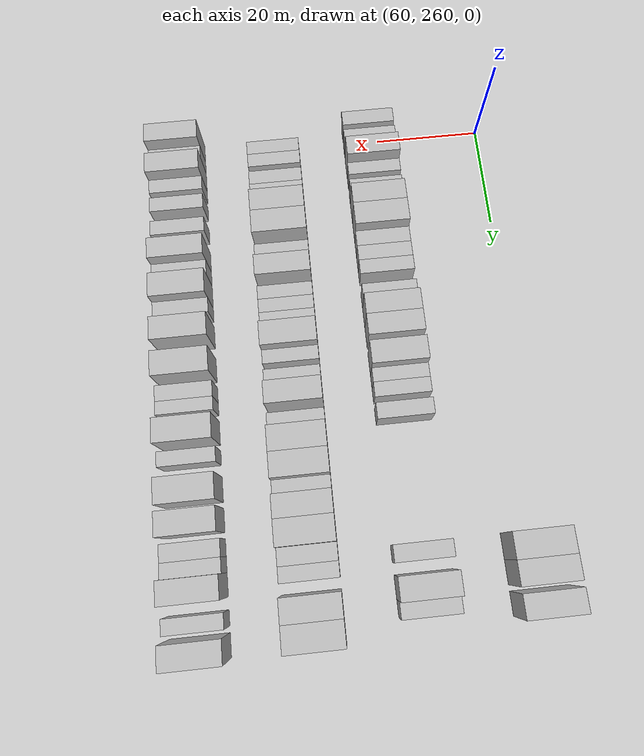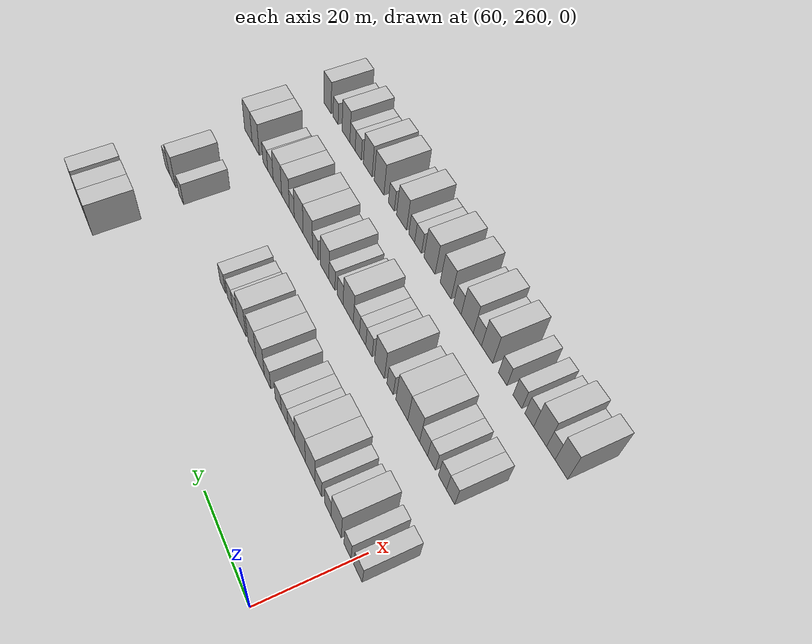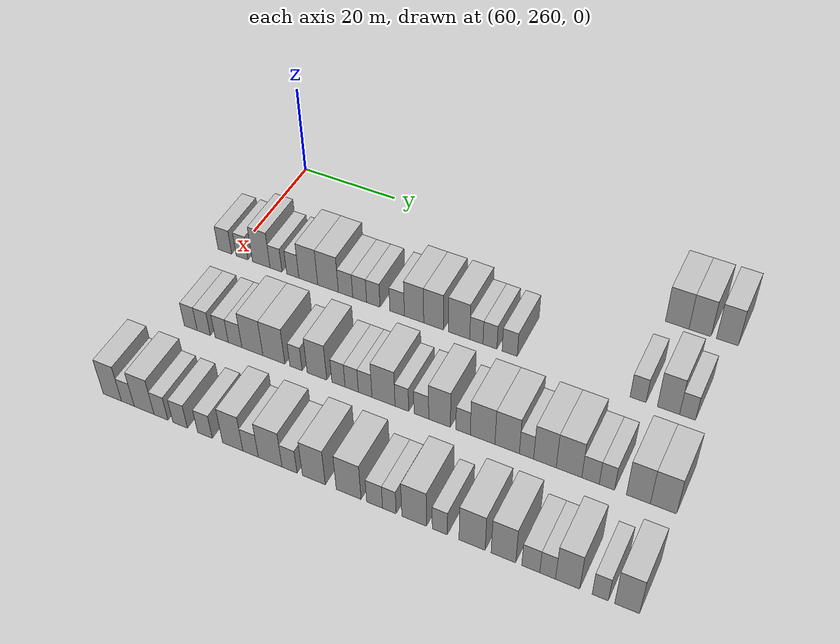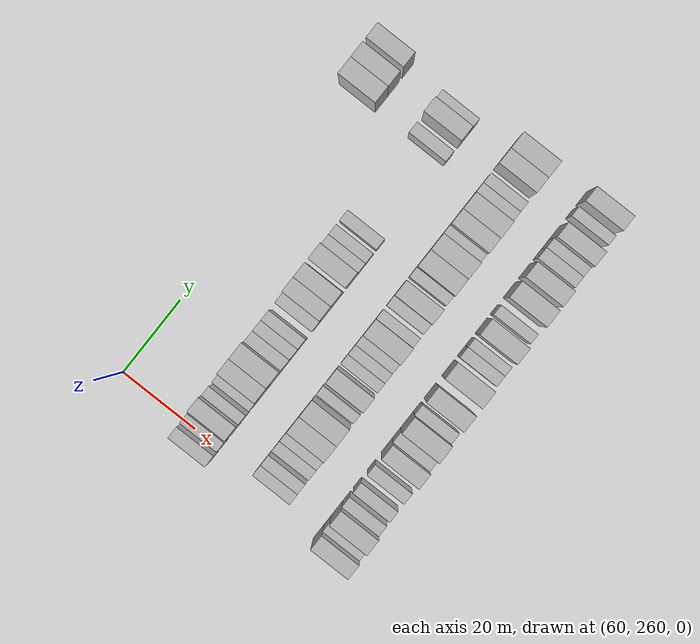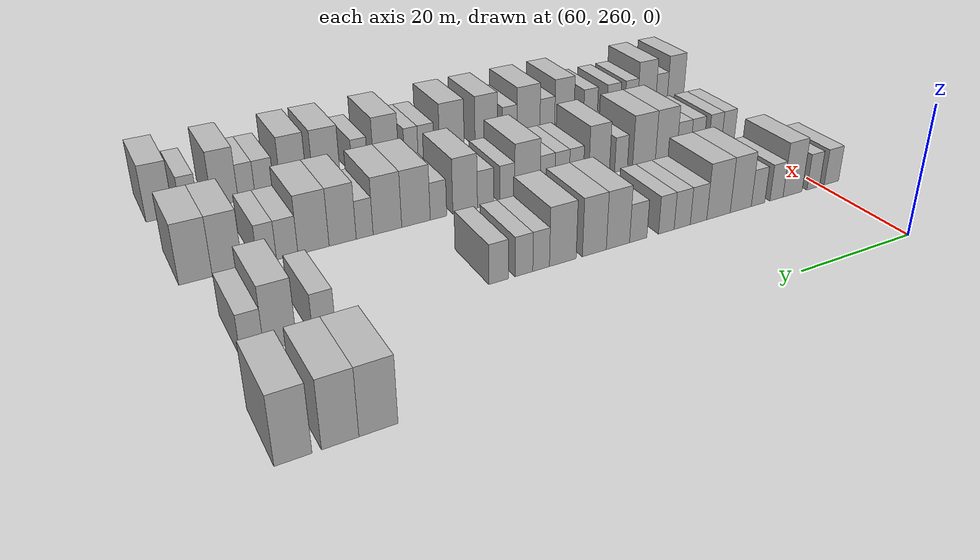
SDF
<sdf version="1.6">
 <world name="default">
  <model name="building_530">
   <static>1</static>
   <pose>63.0000 340.7770 0 0.000000 0.000000 0.000000</pose>
   <link name="link">
    <pose>0 0 4.50 0 0 0</pose>
    <collision name="collision"><geometry><box><size>10.0000 4.3967 9.0000</size></box></geometry></collision>
    <visual name="visual">
     <cast_shadows>0</cast_shadows>
     <geometry><box><size>10.0000 4.3967 9.0000</size></box></geometry>
     <material>
      <script>
       <uri>model://HANNAS_wall/materials/scripts</uri>
       <uri>model://HANNAS_wall/materials/textures</uri>
       <name>vrc/HANNAS_wall</name>
      </script>
     </material>
    </visual>
   </link>
  </model>
  <model name="building_531">
   <static>1</static>
   <pose>63.0000 345.0128 0 0.000000 0.000000 0.000000</pose>
   <link name="link">
    <pose>0 0 4.50 0 0 0</pose>
    <collision name="collision"><geometry><box><size>10.0000 4.0750 9.0000</size></box></geometry></collision>
    <visual name="visual">
     <cast_shadows>0</cast_shadows>
     <geometry><box><size>10.0000 4.0750 9.0000</size></box></geometry>
     <material>
      <script>
       <uri>model://HANNAS_wall/materials/scripts</uri>
       <uri>model://HANNAS_wall/materials/textures</uri>
       <name>vrc/HANNAS_wall</name>
      </script>
     </material>
    </visual>
   </link>
  </model>
  <model name="building_532">
   <static>1</static>
   <pose>63.0000 350.0410 0 0.000000 0.000000 0.000000</pose>
   <link name="link">
    <pose>0 0 4.50 0 0 0</pose>
    <collision name="collision"><geometry><box><size>10.0000 3.9814 9.0000</size></box></geometry></collision>
    <visual name="visual">
     <cast_shadows>0</cast_shadows>
     <geometry><box><size>10.0000 3.9814 9.0000</size></box></geometry>
     <material>
      <script>
       <uri>model://HANNAS_wall/materials/scripts</uri>
       <uri>model://HANNAS_wall/materials/textures</uri>
       <name>vrc/HANNAS_wall</name>
      </script>
     </material>
    </visual>
   </link>
  </model>
  <model name="building_684">
   <static>1</static>
   <pose>82.0000 257.8496 0 0.000000 0.000000 0.000000</pose>
   <link name="link">
    <pose>0 0 3.00 0 0 0</pose>
    <collision name="collision"><geometry><box><size>10.0000 2.9936 6.0000</size></box></geometry></collision>
    <visual name="visual">
     <cast_shadows>0</cast_shadows>
     <geometry><box><size>10.0000 2.9936 6.0000</size></box></geometry>
     <material>
      <script>
       <uri>model://HANNAS_wall/materials/scripts</uri>
       <uri>model://HANNAS_wall/materials/textures</uri>
       <name>vrc/HANNAS_wall</name>
      </script>
     </material>
    </visual>
   </link>
  </model>
  <model name="building_685">
   <static>1</static>
   <pose>82.0000 261.6304 0 0.000000 0.000000 0.000000</pose>
   <link name="link">
    <pose>0 0 3.00 0 0 0</pose>
    <collision name="collision"><geometry><box><size>10.0000 2.5680 6.0000</size></box></geometry></collision>
    <visual name="visual">
     <cast_shadows>0</cast_shadows>
     <geometry><box><size>10.0000 2.5680 6.0000</size></box></geometry>
     <material>
      <script>
       <uri>model://HANNAS_wall/materials/scripts</uri>
       <uri>model://HANNAS_wall/materials/textures</uri>
       <name>vrc/HANNAS_wall</name>
      </script>
     </material>
    </visual>
   </link>
  </model>
  <model name="building_686">
   <static>1</static>
   <pose>82.0000 265.8213 0 0.000000 0.000000 0.000000</pose>
   <link name="link">
    <pose>0 0 4.50 0 0 0</pose>
    <collision name="collision"><geometry><box><size>10.0000 3.8138 9.0000</size></box></geometry></collision>
    <visual name="visual">
     <cast_shadows>0</cast_shadows>
     <geometry><box><size>10.0000 3.8138 9.0000</size></box></geometry>
     <material>
      <script>
       <uri>model://HANNAS_wall/materials/scripts</uri>
       <uri>model://HANNAS_wall/materials/textures</uri>
       <name>vrc/HANNAS_wall</name>
      </script>
     </material>
    </visual>
   </link>
  </model>
  <model name="building_687">
   <static>1</static>
   <pose>82.0000 269.0118 0 0.000000 0.000000 0.000000</pose>
   <link name="link">
    <pose>0 0 3.00 0 0 0</pose>
    <collision name="collision"><geometry><box><size>10.0000 2.5670 6.0000</size></box></geometry></collision>
    <visual name="visual">
     <cast_shadows>0</cast_shadows>
     <geometry><box><size>10.0000 2.5670 6.0000</size></box></geometry>
     <material>
      <script>
       <uri>model://HANNAS_wall/materials/scripts</uri>
       <uri>model://HANNAS_wall/materials/textures</uri>
       <name>vrc/HANNAS_wall</name>
      </script>
     </material>
    </visual>
   </link>
  </model>
  <model name="building_688">
   <static>1</static>
   <pose>82.0000 272.5976 0 0.000000 0.000000 0.000000</pose>
   <link name="link">
    <pose>0 0 3.00 0 0 0</pose>
    <collision name="collision"><geometry><box><size>10.0000 2.6047 6.0000</size></box></geometry></collision>
    <visual name="visual">
     <cast_shadows>0</cast_shadows>
     <geometry><box><size>10.0000 2.6047 6.0000</size></box></geometry>
     <material>
      <script>
       <uri>model://HANNAS_wall/materials/scripts</uri>
       <uri>model://HANNAS_wall/materials/textures</uri>
       <name>vrc/HANNAS_wall</name>
      </script>
     </material>
    </visual>
   </link>
  </model>
  <model name="building_689">
   <static>1</static>
   <pose>82.0000 275.8940 0 0.000000 0.000000 0.000000</pose>
   <link name="link">
    <pose>0 0 4.50 0 0 0</pose>
    <collision name="collision"><geometry><box><size>10.0000 3.9879 9.0000</size></box></geometry></collision>
    <visual name="visual">
     <cast_shadows>0</cast_shadows>
     <geometry><box><size>10.0000 3.9879 9.0000</size></box></geometry>
     <material>
      <script>
       <uri>model://HANNAS_wall/materials/scripts</uri>
       <uri>model://HANNAS_wall/materials/textures</uri>
       <name>vrc/HANNAS_wall</name>
      </script>
     </material>
    </visual>
   </link>
  </model>
  <model name="building_690">
   <static>1</static>
   <pose>82.0000 280.0515 0 0.000000 0.000000 0.000000</pose>
   <link name="link">
    <pose>0 0 4.50 0 0 0</pose>
    <collision name="collision"><geometry><box><size>10.0000 4.3272 9.0000</size></box></geometry></collision>
    <visual name="visual">
     <cast_shadows>0</cast_shadows>
     <geometry><box><size>10.0000 4.3272 9.0000</size></box></geometry>
     <material>
      <script>
       <uri>model://HANNAS_wall/materials/scripts</uri>
       <uri>model://HANNAS_wall/materials/textures</uri>
       <name>vrc/HANNAS_wall</name>
      </script>
     </material>
    </visual>
   </link>
  </model>
  <model name="building_691">
   <static>1</static>
   <pose>82.0000 283.7047 0 0.000000 0.000000 0.000000</pose>
   <link name="link">
    <pose>0 0 3.00 0 0 0</pose>
    <collision name="collision"><geometry><box><size>10.0000 2.9791 6.0000</size></box></geometry></collision>
    <visual name="visual">
     <cast_shadows>0</cast_shadows>
     <geometry><box><size>10.0000 2.9791 6.0000</size></box></geometry>
     <material>
      <script>
       <uri>model://HANNAS_wall/materials/scripts</uri>
       <uri>model://HANNAS_wall/materials/textures</uri>
       <name>vrc/HANNAS_wall</name>
      </script>
     </material>
    </visual>
   </link>
  </model>
  <model name="building_692">
   <static>1</static>
   <pose>82.0000 286.6263 0 0.000000 0.000000 0.000000</pose>
   <link name="link">
    <pose>0 0 3.00 0 0 0</pose>
    <collision name="collision"><geometry><box><size>10.0000 2.8641 6.0000</size></box></geometry></collision>
    <visual name="visual">
     <cast_shadows>0</cast_shadows>
     <geometry><box><size>10.0000 2.8641 6.0000</size></box></geometry>
     <material>
      <script>
       <uri>model://HANNAS_wall/materials/scripts</uri>
       <uri>model://HANNAS_wall/materials/textures</uri>
       <name>vrc/HANNAS_wall</name>
      </script>
     </material>
    </visual>
   </link>
  </model>
  <model name="building_693">
   <static>1</static>
   <pose>82.0000 289.4243 0 0.000000 0.000000 0.000000</pose>
   <link name="link">
    <pose>0 0 3.00 0 0 0</pose>
    <collision name="collision"><geometry><box><size>10.0000 2.7320 6.0000</size></box></geometry></collision>
    <visual name="visual">
     <cast_shadows>0</cast_shadows>
     <geometry><box><size>10.0000 2.7320 6.0000</size></box></geometry>
     <material>
      <script>
       <uri>model://HANNAS_wall/materials/scripts</uri>
       <uri>model://HANNAS_wall/materials/textures</uri>
       <name>vrc/HANNAS_wall</name>
      </script>
     </material>
    </visual>
   </link>
  </model>
  <model name="building_694">
   <static>1</static>
   <pose>82.0000 294.2600 0 0.000000 0.000000 0.000000</pose>
   <link name="link">
    <pose>0 0 3.00 0 0 0</pose>
    <collision name="collision"><geometry><box><size>10.0000 2.9395 6.0000</size></box></geometry></collision>
    <visual name="visual">
     <cast_shadows>0</cast_shadows>
     <geometry><box><size>10.0000 2.9395 6.0000</size></box></geometry>
     <material>
      <script>
       <uri>model://HANNAS_wall/materials/scripts</uri>
       <uri>model://HANNAS_wall/materials/textures</uri>
       <name>vrc/HANNAS_wall</name>
      </script>
     </material>
    </visual>
   </link>
  </model>
  <model name="building_695">
   <static>1</static>
   <pose>82.0000 297.6639 0 0.000000 0.000000 0.000000</pose>
   <link name="link">
    <pose>0 0 4.50 0 0 0</pose>
    <collision name="collision"><geometry><box><size>10.0000 3.8684 9.0000</size></box></geometry></collision>
    <visual name="visual">
     <cast_shadows>0</cast_shadows>
     <geometry><box><size>10.0000 3.8684 9.0000</size></box></geometry>
     <material>
      <script>
       <uri>model://HANNAS_wall/materials/scripts</uri>
       <uri>model://HANNAS_wall/materials/textures</uri>
       <name>vrc/HANNAS_wall</name>
      </script>
     </material>
    </visual>
   </link>
  </model>
  <model name="building_696">
   <static>1</static>
   <pose>82.0000 301.5385 0 0.000000 0.000000 0.000000</pose>
   <link name="link">
    <pose>0 0 4.50 0 0 0</pose>
    <collision name="collision"><geometry><box><size>10.0000 3.8808 9.0000</size></box></geometry></collision>
    <visual name="visual">
     <cast_shadows>0</cast_shadows>
     <geometry><box><size>10.0000 3.8808 9.0000</size></box></geometry>
     <material>
      <script>
       <uri>model://HANNAS_wall/materials/scripts</uri>
       <uri>model://HANNAS_wall/materials/textures</uri>
       <name>vrc/HANNAS_wall</name>
      </script>
     </material>
    </visual>
   </link>
  </model>
  <model name="building_697">
   <static>1</static>
   <pose>82.0000 306.5736 0 0.000000 0.000000 0.000000</pose>
   <link name="link">
    <pose>0 0 4.50 0 0 0</pose>
    <collision name="collision"><geometry><box><size>10.0000 4.1893 9.0000</size></box></geometry></collision>
    <visual name="visual">
     <cast_shadows>0</cast_shadows>
     <geometry><box><size>10.0000 4.1893 9.0000</size></box></geometry>
     <material>
      <script>
       <uri>model://HANNAS_wall/materials/scripts</uri>
       <uri>model://HANNAS_wall/materials/textures</uri>
       <name>vrc/HANNAS_wall</name>
      </script>
     </material>
    </visual>
   </link>
  </model>
  <model name="building_698">
   <static>1</static>
   <pose>82.0000 309.9473 0 0.000000 0.000000 0.000000</pose>
   <link name="link">
    <pose>0 0 3.00 0 0 0</pose>
    <collision name="collision"><geometry><box><size>10.0000 2.5582 6.0000</size></box></geometry></collision>
    <visual name="visual">
     <cast_shadows>0</cast_shadows>
     <geometry><box><size>10.0000 2.5582 6.0000</size></box></geometry>
     <material>
      <script>
       <uri>model://HANNAS_wall/materials/scripts</uri>
       <uri>model://HANNAS_wall/materials/textures</uri>
       <name>vrc/HANNAS_wall</name>
      </script>
     </material>
    </visual>
   </link>
  </model>
  <model name="building_699">
   <static>1</static>
   <pose>82.0000 312.5657 0 0.000000 0.000000 0.000000</pose>
   <link name="link">
    <pose>0 0 3.00 0 0 0</pose>
    <collision name="collision"><geometry><box><size>10.0000 2.6786 6.0000</size></box></geometry></collision>
    <visual name="visual">
     <cast_shadows>0</cast_shadows>
     <geometry><box><size>10.0000 2.6786 6.0000</size></box></geometry>
     <material>
      <script>
       <uri>model://HANNAS_wall/materials/scripts</uri>
       <uri>model://HANNAS_wall/materials/textures</uri>
       <name>vrc/HANNAS_wall</name>
      </script>
     </material>
    </visual>
   </link>
  </model>
  <model name="building_700">
   <static>1</static>
   <pose>82.0000 316.3505 0 0.000000 0.000000 0.000000</pose>
   <link name="link">
    <pose>0 0 3.00 0 0 0</pose>
    <collision name="collision"><geometry><box><size>10.0000 2.8912 6.0000</size></box></geometry></collision>
    <visual name="visual">
     <cast_shadows>0</cast_shadows>
     <geometry><box><size>10.0000 2.8912 6.0000</size></box></geometry>
     <material>
      <script>
       <uri>model://HANNAS_wall/materials/scripts</uri>
       <uri>model://HANNAS_wall/materials/textures</uri>
       <name>vrc/HANNAS_wall</name>
      </script>
     </material>
    </visual>
   </link>
  </model>
  <model name="building_701">
   <static>1</static>
   <pose>82.0000 340.0831 0 0.000000 0.000000 0.000000</pose>
   <link name="link">
    <pose>0 0 3.00 0 0 0</pose>
    <collision name="collision"><geometry><box><size>10.0000 2.8580 6.0000</size></box></geometry></collision>
    <visual name="visual">
     <cast_shadows>0</cast_shadows>
     <geometry><box><size>10.0000 2.8580 6.0000</size></box></geometry>
     <material>
      <script>
       <uri>model://HANNAS_wall/materials/scripts</uri>
       <uri>model://HANNAS_wall/materials/textures</uri>
       <name>vrc/HANNAS_wall</name>
      </script>
     </material>
    </visual>
   </link>
  </model>
  <model name="building_702">
   <static>1</static>
   <pose>82.0000 345.4756 0 0.000000 0.000000 0.000000</pose>
   <link name="link">
    <pose>0 0 4.50 0 0 0</pose>
    <collision name="collision"><geometry><box><size>10.0000 3.9269 9.0000</size></box></geometry></collision>
    <visual name="visual">
     <cast_shadows>0</cast_shadows>
     <geometry><box><size>10.0000 3.9269 9.0000</size></box></geometry>
     <material>
      <script>
       <uri>model://HANNAS_wall/materials/scripts</uri>
       <uri>model://HANNAS_wall/materials/textures</uri>
       <name>vrc/HANNAS_wall</name>
      </script>
     </material>
    </visual>
   </link>
  </model>
  <model name="building_703">
   <static>1</static>
   <pose>82.0000 348.8343 0 0.000000 0.000000 0.000000</pose>
   <link name="link">
    <pose>0 0 3.00 0 0 0</pose>
    <collision name="collision"><geometry><box><size>10.0000 2.7905 6.0000</size></box></geometry></collision>
    <visual name="visual">
     <cast_shadows>0</cast_shadows>
     <geometry><box><size>10.0000 2.7905 6.0000</size></box></geometry>
     <material>
      <script>
       <uri>model://HANNAS_wall/materials/scripts</uri>
       <uri>model://HANNAS_wall/materials/textures</uri>
       <name>vrc/HANNAS_wall</name>
      </script>
     </material>
    </visual>
   </link>
  </model>
  <model name="building_861">
   <static>1</static>
   <pose>101.0000 262.5961 0 0.000000 0.000000 0.000000</pose>
   <link name="link">
    <pose>0 0 3.00 0 0 0</pose>
    <collision name="collision"><geometry><box><size>10.0000 2.7199 6.0000</size></box></geometry></collision>
    <visual name="visual">
     <cast_shadows>0</cast_shadows>
     <geometry><box><size>10.0000 2.7199 6.0000</size></box></geometry>
     <material>
      <script>
       <uri>model://HANNAS_wall/materials/scripts</uri>
       <uri>model://HANNAS_wall/materials/textures</uri>
       <name>vrc/HANNAS_wall</name>
      </script>
     </material>
    </visual>
   </link>
  </model>
  <model name="building_862">
   <static>1</static>
   <pose>101.0000 265.3268 0 0.000000 0.000000 0.000000</pose>
   <link name="link">
    <pose>0 0 3.00 0 0 0</pose>
    <collision name="collision"><geometry><box><size>10.0000 2.7416 6.0000</size></box></geometry></collision>
    <visual name="visual">
     <cast_shadows>0</cast_shadows>
     <geometry><box><size>10.0000 2.7416 6.0000</size></box></geometry>
     <material>
      <script>
       <uri>model://HANNAS_wall/materials/scripts</uri>
       <uri>model://HANNAS_wall/materials/textures</uri>
       <name>vrc/HANNAS_wall</name>
      </script>
     </material>
    </visual>
   </link>
  </model>
  <model name="building_863">
   <static>1</static>
   <pose>101.0000 269.0658 0 0.000000 0.000000 0.000000</pose>
   <link name="link">
    <pose>0 0 3.00 0 0 0</pose>
    <collision name="collision"><geometry><box><size>10.0000 2.7363 6.0000</size></box></geometry></collision>
    <visual name="visual">
     <cast_shadows>0</cast_shadows>
     <geometry><box><size>10.0000 2.7363 6.0000</size></box></geometry>
     <material>
      <script>
       <uri>model://HANNAS_wall/materials/scripts</uri>
       <uri>model://HANNAS_wall/materials/textures</uri>
       <name>vrc/HANNAS_wall</name>
      </script>
     </material>
    </visual>
   </link>
  </model>
  <model name="building_864">
   <static>1</static>
   <pose>101.0000 271.8410 0 0.000000 0.000000 0.000000</pose>
   <link name="link">
    <pose>0 0 3.00 0 0 0</pose>
    <collision name="collision"><geometry><box><size>10.0000 2.8142 6.0000</size></box></geometry></collision>
    <visual name="visual">
     <cast_shadows>0</cast_shadows>
     <geometry><box><size>10.0000 2.8142 6.0000</size></box></geometry>
     <material>
      <script>
       <uri>model://HANNAS_wall/materials/scripts</uri>
       <uri>model://HANNAS_wall/materials/textures</uri>
       <name>vrc/HANNAS_wall</name>
      </script>
     </material>
    </visual>
   </link>
  </model>
  <model name="building_865">
   <static>1</static>
   <pose>101.0000 275.3863 0 0.000000 0.000000 0.000000</pose>
   <link name="link">
    <pose>0 0 4.50 0 0 0</pose>
    <collision name="collision"><geometry><box><size>10.0000 4.2764 9.0000</size></box></geometry></collision>
    <visual name="visual">
     <cast_shadows>0</cast_shadows>
     <geometry><box><size>10.0000 4.2764 9.0000</size></box></geometry>
     <material>
      <script>
       <uri>model://HANNAS_wall/materials/scripts</uri>
       <uri>model://HANNAS_wall/materials/textures</uri>
       <name>vrc/HANNAS_wall</name>
      </script>
     </material>
    </visual>
   </link>
  </model>
  <model name="building_866">
   <static>1</static>
   <pose>101.0000 279.7513 0 0.000000 0.000000 0.000000</pose>
   <link name="link">
    <pose>0 0 4.50 0 0 0</pose>
    <collision name="collision"><geometry><box><size>10.0000 4.4536 9.0000</size></box></geometry></collision>
    <visual name="visual">
     <cast_shadows>0</cast_shadows>
     <geometry><box><size>10.0000 4.4536 9.0000</size></box></geometry>
     <material>
      <script>
       <uri>model://HANNAS_wall/materials/scripts</uri>
       <uri>model://HANNAS_wall/materials/textures</uri>
       <name>vrc/HANNAS_wall</name>
      </script>
     </material>
    </visual>
   </link>
  </model>
  <model name="building_867">
   <static>1</static>
   <pose>101.0000 284.1963 0 0.000000 0.000000 0.000000</pose>
   <link name="link">
    <pose>0 0 3.00 0 0 0</pose>
    <collision name="collision"><geometry><box><size>10.0000 2.4364 6.0000</size></box></geometry></collision>
    <visual name="visual">
     <cast_shadows>0</cast_shadows>
     <geometry><box><size>10.0000 2.4364 6.0000</size></box></geometry>
     <material>
      <script>
       <uri>model://HANNAS_wall/materials/scripts</uri>
       <uri>model://HANNAS_wall/materials/textures</uri>
       <name>vrc/HANNAS_wall</name>
      </script>
     </material>
    </visual>
   </link>
  </model>
  <model name="building_868">
   <static>1</static>
   <pose>101.0000 288.3497 0 0.000000 0.000000 0.000000</pose>
   <link name="link">
    <pose>0 0 4.50 0 0 0</pose>
    <collision name="collision"><geometry><box><size>10.0000 3.8704 9.0000</size></box></geometry></collision>
    <visual name="visual">
     <cast_shadows>0</cast_shadows>
     <geometry><box><size>10.0000 3.8704 9.0000</size></box></geometry>
     <material>
      <script>
       <uri>model://HANNAS_wall/materials/scripts</uri>
       <uri>model://HANNAS_wall/materials/textures</uri>
       <name>vrc/HANNAS_wall</name>
      </script>
     </material>
    </visual>
   </link>
  </model>
  <model name="building_869">
   <static>1</static>
   <pose>101.0000 292.5720 0 0.000000 0.000000 0.000000</pose>
   <link name="link">
    <pose>0 0 3.00 0 0 0</pose>
    <collision name="collision"><geometry><box><size>10.0000 2.5742 6.0000</size></box></geometry></collision>
    <visual name="visual">
     <cast_shadows>0</cast_shadows>
     <geometry><box><size>10.0000 2.5742 6.0000</size></box></geometry>
     <material>
      <script>
       <uri>model://HANNAS_wall/materials/scripts</uri>
       <uri>model://HANNAS_wall/materials/textures</uri>
       <name>vrc/HANNAS_wall</name>
      </script>
     </material>
    </visual>
   </link>
  </model>
  <model name="building_870">
   <static>1</static>
   <pose>101.0000 295.1462 0 0.000000 0.000000 0.000000</pose>
   <link name="link">
    <pose>0 0 3.00 0 0 0</pose>
    <collision name="collision"><geometry><box><size>10.0000 2.5742 6.0000</size></box></geometry></collision>
    <visual name="visual">
     <cast_shadows>0</cast_shadows>
     <geometry><box><size>10.0000 2.5742 6.0000</size></box></geometry>
     <material>
      <script>
       <uri>model://HANNAS_wall/materials/scripts</uri>
       <uri>model://HANNAS_wall/materials/textures</uri>
       <name>vrc/HANNAS_wall</name>
      </script>
     </material>
    </visual>
   </link>
  </model>
  <model name="building_871">
   <static>1</static>
   <pose>101.0000 297.7409 0 0.000000 0.000000 0.000000</pose>
   <link name="link">
    <pose>0 0 3.00 0 0 0</pose>
    <collision name="collision"><geometry><box><size>10.0000 2.6152 6.0000</size></box></geometry></collision>
    <visual name="visual">
     <cast_shadows>0</cast_shadows>
     <geometry><box><size>10.0000 2.6152 6.0000</size></box></geometry>
     <material>
      <script>
       <uri>model://HANNAS_wall/materials/scripts</uri>
       <uri>model://HANNAS_wall/materials/textures</uri>
       <name>vrc/HANNAS_wall</name>
      </script>
     </material>
    </visual>
   </link>
  </model>
  <model name="building_872">
   <static>1</static>
   <pose>101.0000 301.2508 0 0.000000 0.000000 0.000000</pose>
   <link name="link">
    <pose>0 0 4.50 0 0 0</pose>
    <collision name="collision"><geometry><box><size>10.0000 4.4047 9.0000</size></box></geometry></collision>
    <visual name="visual">
     <cast_shadows>0</cast_shadows>
     <geometry><box><size>10.0000 4.4047 9.0000</size></box></geometry>
     <material>
      <script>
       <uri>model://HANNAS_wall/materials/scripts</uri>
       <uri>model://HANNAS_wall/materials/textures</uri>
       <name>vrc/HANNAS_wall</name>
      </script>
     </material>
    </visual>
   </link>
  </model>
  <model name="building_873">
   <static>1</static>
   <pose>101.0000 304.7379 0 0.000000 0.000000 0.000000</pose>
   <link name="link">
    <pose>0 0 3.00 0 0 0</pose>
    <collision name="collision"><geometry><box><size>10.0000 2.5694 6.0000</size></box></geometry></collision>
    <visual name="visual">
     <cast_shadows>0</cast_shadows>
     <geometry><box><size>10.0000 2.5694 6.0000</size></box></geometry>
     <material>
      <script>
       <uri>model://HANNAS_wall/materials/scripts</uri>
       <uri>model://HANNAS_wall/materials/textures</uri>
       <name>vrc/HANNAS_wall</name>
      </script>
     </material>
    </visual>
   </link>
  </model>
  <model name="building_874">
   <static>1</static>
   <pose>101.0000 308.3879 0 0.000000 0.000000 0.000000</pose>
   <link name="link">
    <pose>0 0 3.00 0 0 0</pose>
    <collision name="collision"><geometry><box><size>10.0000 2.7307 6.0000</size></box></geometry></collision>
    <visual name="visual">
     <cast_shadows>0</cast_shadows>
     <geometry><box><size>10.0000 2.7307 6.0000</size></box></geometry>
     <material>
      <script>
       <uri>model://HANNAS_wall/materials/scripts</uri>
       <uri>model://HANNAS_wall/materials/textures</uri>
       <name>vrc/HANNAS_wall</name>
      </script>
     </material>
    </visual>
   </link>
  </model>
  <model name="building_875">
   <static>1</static>
   <pose>101.0000 311.7676 0 0.000000 0.000000 0.000000</pose>
   <link name="link">
    <pose>0 0 4.50 0 0 0</pose>
    <collision name="collision"><geometry><box><size>10.0000 4.0286 9.0000</size></box></geometry></collision>
    <visual name="visual">
     <cast_shadows>0</cast_shadows>
     <geometry><box><size>10.0000 4.0286 9.0000</size></box></geometry>
     <material>
      <script>
       <uri>model://HANNAS_wall/materials/scripts</uri>
       <uri>model://HANNAS_wall/materials/textures</uri>
       <name>vrc/HANNAS_wall</name>
      </script>
     </material>
    </visual>
   </link>
  </model>
  <model name="building_876">
   <static>1</static>
   <pose>101.0000 316.0989 0 0.000000 0.000000 0.000000</pose>
   <link name="link">
    <pose>0 0 3.00 0 0 0</pose>
    <collision name="collision"><geometry><box><size>10.0000 2.6341 6.0000</size></box></geometry></collision>
    <visual name="visual">
     <cast_shadows>0</cast_shadows>
     <geometry><box><size>10.0000 2.6341 6.0000</size></box></geometry>
     <material>
      <script>
       <uri>model://HANNAS_wall/materials/scripts</uri>
       <uri>model://HANNAS_wall/materials/textures</uri>
       <name>vrc/HANNAS_wall</name>
      </script>
     </material>
    </visual>
   </link>
  </model>
  <model name="building_877">
   <static>1</static>
   <pose>101.0000 319.6491 0 0.000000 0.000000 0.000000</pose>
   <link name="link">
    <pose>0 0 4.50 0 0 0</pose>
    <collision name="collision"><geometry><box><size>10.0000 4.4662 9.0000</size></box></geometry></collision>
    <visual name="visual">
     <cast_shadows>0</cast_shadows>
     <geometry><box><size>10.0000 4.4662 9.0000</size></box></geometry>
     <material>
      <script>
       <uri>model://HANNAS_wall/materials/scripts</uri>
       <uri>model://HANNAS_wall/materials/textures</uri>
       <name>vrc/HANNAS_wall</name>
      </script>
     </material>
    </visual>
   </link>
  </model>
  <model name="building_878">
   <static>1</static>
   <pose>101.0000 324.0628 0 0.000000 0.000000 0.000000</pose>
   <link name="link">
    <pose>0 0 4.50 0 0 0</pose>
    <collision name="collision"><geometry><box><size>10.0000 4.3613 9.0000</size></box></geometry></collision>
    <visual name="visual">
     <cast_shadows>0</cast_shadows>
     <geometry><box><size>10.0000 4.3613 9.0000</size></box></geometry>
     <material>
      <script>
       <uri>model://HANNAS_wall/materials/scripts</uri>
       <uri>model://HANNAS_wall/materials/textures</uri>
       <name>vrc/HANNAS_wall</name>
      </script>
     </material>
    </visual>
   </link>
  </model>
  <model name="building_879">
   <static>1</static>
   <pose>101.0000 327.5061 0 0.000000 0.000000 0.000000</pose>
   <link name="link">
    <pose>0 0 3.00 0 0 0</pose>
    <collision name="collision"><geometry><box><size>10.0000 2.5251 6.0000</size></box></geometry></collision>
    <visual name="visual">
     <cast_shadows>0</cast_shadows>
     <geometry><box><size>10.0000 2.5251 6.0000</size></box></geometry>
     <material>
      <script>
       <uri>model://HANNAS_wall/materials/scripts</uri>
       <uri>model://HANNAS_wall/materials/textures</uri>
       <name>vrc/HANNAS_wall</name>
      </script>
     </material>
    </visual>
   </link>
  </model>
  <model name="building_880">
   <static>1</static>
   <pose>101.0000 330.7522 0 0.000000 0.000000 0.000000</pose>
   <link name="link">
    <pose>0 0 4.50 0 0 0</pose>
    <collision name="collision"><geometry><box><size>10.0000 3.9672 9.0000</size></box></geometry></collision>
    <visual name="visual">
     <cast_shadows>0</cast_shadows>
     <geometry><box><size>10.0000 3.9672 9.0000</size></box></geometry>
     <material>
      <script>
       <uri>model://HANNAS_wall/materials/scripts</uri>
       <uri>model://HANNAS_wall/materials/textures</uri>
       <name>vrc/HANNAS_wall</name>
      </script>
     </material>
    </visual>
   </link>
  </model>
  <model name="building_881">
   <static>1</static>
   <pose>101.0000 334.9594 0 0.000000 0.000000 0.000000</pose>
   <link name="link">
    <pose>0 0 4.50 0 0 0</pose>
    <collision name="collision"><geometry><box><size>10.0000 4.4472 9.0000</size></box></geometry></collision>
    <visual name="visual">
     <cast_shadows>0</cast_shadows>
     <geometry><box><size>10.0000 4.4472 9.0000</size></box></geometry>
     <material>
      <script>
       <uri>model://HANNAS_wall/materials/scripts</uri>
       <uri>model://HANNAS_wall/materials/textures</uri>
       <name>vrc/HANNAS_wall</name>
      </script>
     </material>
    </visual>
   </link>
  </model>
  <model name="building_882">
   <static>1</static>
   <pose>101.0000 338.6801 0 0.000000 0.000000 0.000000</pose>
   <link name="link">
    <pose>0 0 3.00 0 0 0</pose>
    <collision name="collision"><geometry><box><size>10.0000 2.9943 6.0000</size></box></geometry></collision>
    <visual name="visual">
     <cast_shadows>0</cast_shadows>
     <geometry><box><size>10.0000 2.9943 6.0000</size></box></geometry>
     <material>
      <script>
       <uri>model://HANNAS_wall/materials/scripts</uri>
       <uri>model://HANNAS_wall/materials/textures</uri>
       <name>vrc/HANNAS_wall</name>
      </script>
     </material>
    </visual>
   </link>
  </model>
  <model name="building_883">
   <static>1</static>
   <pose>101.0000 341.4800 0 0.000000 0.000000 0.000000</pose>
   <link name="link">
    <pose>0 0 3.00 0 0 0</pose>
    <collision name="collision"><geometry><box><size>10.0000 2.6054 6.0000</size></box></geometry></collision>
    <visual name="visual">
     <cast_shadows>0</cast_shadows>
     <geometry><box><size>10.0000 2.6054 6.0000</size></box></geometry>
     <material>
      <script>
       <uri>model://HANNAS_wall/materials/scripts</uri>
       <uri>model://HANNAS_wall/materials/textures</uri>
       <name>vrc/HANNAS_wall</name>
      </script>
     </material>
    </visual>
   </link>
  </model>
  <model name="building_884">
   <static>1</static>
   <pose>101.0000 346.7959 0 0.000000 0.000000 0.000000</pose>
   <link name="link">
    <pose>0 0 4.50 0 0 0</pose>
    <collision name="collision"><geometry><box><size>10.0000 4.0265 9.0000</size></box></geometry></collision>
    <visual name="visual">
     <cast_shadows>0</cast_shadows>
     <geometry><box><size>10.0000 4.0265 9.0000</size></box></geometry>
     <material>
      <script>
       <uri>model://HANNAS_wall/materials/scripts</uri>
       <uri>model://HANNAS_wall/materials/textures</uri>
       <name>vrc/HANNAS_wall</name>
      </script>
     </material>
    </visual>
   </link>
  </model>
  <model name="building_885">
   <static>1</static>
   <pose>101.0000 350.9840 0 0.000000 0.000000 0.000000</pose>
   <link name="link">
    <pose>0 0 4.50 0 0 0</pose>
    <collision name="collision"><geometry><box><size>10.0000 4.3496 9.0000</size></box></geometry></collision>
    <visual name="visual">
     <cast_shadows>0</cast_shadows>
     <geometry><box><size>10.0000 4.3496 9.0000</size></box></geometry>
     <material>
      <script>
       <uri>model://HANNAS_wall/materials/scripts</uri>
       <uri>model://HANNAS_wall/materials/textures</uri>
       <name>vrc/HANNAS_wall</name>
      </script>
     </material>
    </visual>
   </link>
  </model>
  <model name="building_1043">
   <static>1</static>
   <pose>120.0000 259.1931 0 0.000000 0.000000 0.000000</pose>
   <link name="link">
    <pose>0 0 4.50 0 0 0</pose>
    <collision name="collision"><geometry><box><size>10.0000 3.7376 9.0000</size></box></geometry></collision>
    <visual name="visual">
     <cast_shadows>0</cast_shadows>
     <geometry><box><size>10.0000 3.7376 9.0000</size></box></geometry>
     <material>
      <script>
       <uri>model://HANNAS_wall/materials/scripts</uri>
       <uri>model://HANNAS_wall/materials/textures</uri>
       <name>vrc/HANNAS_wall</name>
      </script>
     </material>
    </visual>
   </link>
  </model>
  <model name="building_1044">
   <static>1</static>
   <pose>120.0000 262.3566 0 0.000000 0.000000 0.000000</pose>
   <link name="link">
    <pose>0 0 3.00 0 0 0</pose>
    <collision name="collision"><geometry><box><size>10.0000 2.5894 6.0000</size></box></geometry></collision>
    <visual name="visual">
     <cast_shadows>0</cast_shadows>
     <geometry><box><size>10.0000 2.5894 6.0000</size></box></geometry>
     <material>
      <script>
       <uri>model://HANNAS_wall/materials/scripts</uri>
       <uri>model://HANNAS_wall/materials/textures</uri>
       <name>vrc/HANNAS_wall</name>
      </script>
     </material>
    </visual>
   </link>
  </model>
  <model name="building_1045">
   <static>1</static>
   <pose>120.0000 265.6541 0 0.000000 0.000000 0.000000</pose>
   <link name="link">
    <pose>0 0 4.50 0 0 0</pose>
    <collision name="collision"><geometry><box><size>10.0000 4.0057 9.0000</size></box></geometry></collision>
    <visual name="visual">
     <cast_shadows>0</cast_shadows>
     <geometry><box><size>10.0000 4.0057 9.0000</size></box></geometry>
     <material>
      <script>
       <uri>model://HANNAS_wall/materials/scripts</uri>
       <uri>model://HANNAS_wall/materials/textures</uri>
       <name>vrc/HANNAS_wall</name>
      </script>
     </material>
    </visual>
   </link>
  </model>
  <model name="building_1046">
   <static>1</static>
   <pose>120.0000 269.0458 0 0.000000 0.000000 0.000000</pose>
   <link name="link">
    <pose>0 0 3.00 0 0 0</pose>
    <collision name="collision"><geometry><box><size>10.0000 2.7777 6.0000</size></box></geometry></collision>
    <visual name="visual">
     <cast_shadows>0</cast_shadows>
     <geometry><box><size>10.0000 2.7777 6.0000</size></box></geometry>
     <material>
      <script>
       <uri>model://HANNAS_wall/materials/scripts</uri>
       <uri>model://HANNAS_wall/materials/textures</uri>
       <name>vrc/HANNAS_wall</name>
      </script>
     </material>
    </visual>
   </link>
  </model>
  <model name="building_1047">
   <static>1</static>
   <pose>120.0000 272.8713 0 0.000000 0.000000 0.000000</pose>
   <link name="link">
    <pose>0 0 3.00 0 0 0</pose>
    <collision name="collision"><geometry><box><size>10.0000 2.8733 6.0000</size></box></geometry></collision>
    <visual name="visual">
     <cast_shadows>0</cast_shadows>
     <geometry><box><size>10.0000 2.8733 6.0000</size></box></geometry>
     <material>
      <script>
       <uri>model://HANNAS_wall/materials/scripts</uri>
       <uri>model://HANNAS_wall/materials/textures</uri>
       <name>vrc/HANNAS_wall</name>
      </script>
     </material>
    </visual>
   </link>
  </model>
  <model name="building_1048">
   <static>1</static>
   <pose>120.0000 277.7418 0 0.000000 0.000000 0.000000</pose>
   <link name="link">
    <pose>0 0 3.00 0 0 0</pose>
    <collision name="collision"><geometry><box><size>10.0000 2.8676 6.0000</size></box></geometry></collision>
    <visual name="visual">
     <cast_shadows>0</cast_shadows>
     <geometry><box><size>10.0000 2.8676 6.0000</size></box></geometry>
     <material>
      <script>
       <uri>model://HANNAS_wall/materials/scripts</uri>
       <uri>model://HANNAS_wall/materials/textures</uri>
       <name>vrc/HANNAS_wall</name>
      </script>
     </material>
    </visual>
   </link>
  </model>
  <model name="building_1049">
   <static>1</static>
   <pose>120.0000 283.1303 0 0.000000 0.000000 0.000000</pose>
   <link name="link">
    <pose>0 0 4.50 0 0 0</pose>
    <collision name="collision"><geometry><box><size>10.0000 3.9094 9.0000</size></box></geometry></collision>
    <visual name="visual">
     <cast_shadows>0</cast_shadows>
     <geometry><box><size>10.0000 3.9094 9.0000</size></box></geometry>
     <material>
      <script>
       <uri>model://HANNAS_wall/materials/scripts</uri>
       <uri>model://HANNAS_wall/materials/textures</uri>
       <name>vrc/HANNAS_wall</name>
      </script>
     </material>
    </visual>
   </link>
  </model>
  <model name="building_1050">
   <static>1</static>
   <pose>120.0000 286.5544 0 0.000000 0.000000 0.000000</pose>
   <link name="link">
    <pose>0 0 3.00 0 0 0</pose>
    <collision name="collision"><geometry><box><size>10.0000 2.9388 6.0000</size></box></geometry></collision>
    <visual name="visual">
     <cast_shadows>0</cast_shadows>
     <geometry><box><size>10.0000 2.9388 6.0000</size></box></geometry>
     <material>
      <script>
       <uri>model://HANNAS_wall/materials/scripts</uri>
       <uri>model://HANNAS_wall/materials/textures</uri>
       <name>vrc/HANNAS_wall</name>
      </script>
     </material>
    </visual>
   </link>
  </model>
  <model name="building_1051">
   <static>1</static>
   <pose>120.0000 290.2578 0 0.000000 0.000000 0.000000</pose>
   <link name="link">
    <pose>0 0 4.50 0 0 0</pose>
    <collision name="collision"><geometry><box><size>10.0000 4.4681 9.0000</size></box></geometry></collision>
    <visual name="visual">
     <cast_shadows>0</cast_shadows>
     <geometry><box><size>10.0000 4.4681 9.0000</size></box></geometry>
     <material>
      <script>
       <uri>model://HANNAS_wall/materials/scripts</uri>
       <uri>model://HANNAS_wall/materials/textures</uri>
       <name>vrc/HANNAS_wall</name>
      </script>
     </material>
    </visual>
   </link>
  </model>
  <model name="building_1052">
   <static>1</static>
   <pose>120.0000 293.8920 0 0.000000 0.000000 0.000000</pose>
   <link name="link">
    <pose>0 0 3.00 0 0 0</pose>
    <collision name="collision"><geometry><box><size>10.0000 2.8001 6.0000</size></box></geometry></collision>
    <visual name="visual">
     <cast_shadows>0</cast_shadows>
     <geometry><box><size>10.0000 2.8001 6.0000</size></box></geometry>
     <material>
      <script>
       <uri>model://HANNAS_wall/materials/scripts</uri>
       <uri>model://HANNAS_wall/materials/textures</uri>
       <name>vrc/HANNAS_wall</name>
      </script>
     </material>
    </visual>
   </link>
  </model>
  <model name="building_1053">
   <static>1</static>
   <pose>120.0000 298.4001 0 0.000000 0.000000 0.000000</pose>
   <link name="link">
    <pose>0 0 4.50 0 0 0</pose>
    <collision name="collision"><geometry><box><size>10.0000 4.2162 9.0000</size></box></geometry></collision>
    <visual name="visual">
     <cast_shadows>0</cast_shadows>
     <geometry><box><size>10.0000 4.2162 9.0000</size></box></geometry>
     <material>
      <script>
       <uri>model://HANNAS_wall/materials/scripts</uri>
       <uri>model://HANNAS_wall/materials/textures</uri>
       <name>vrc/HANNAS_wall</name>
      </script>
     </material>
    </visual>
   </link>
  </model>
  <model name="building_1054">
   <static>1</static>
   <pose>120.0000 304.7508 0 0.000000 0.000000 0.000000</pose>
   <link name="link">
    <pose>0 0 4.50 0 0 0</pose>
    <collision name="collision"><geometry><box><size>10.0000 4.4851 9.0000</size></box></geometry></collision>
    <visual name="visual">
     <cast_shadows>0</cast_shadows>
     <geometry><box><size>10.0000 4.4851 9.0000</size></box></geometry>
     <material>
      <script>
       <uri>model://HANNAS_wall/materials/scripts</uri>
       <uri>model://HANNAS_wall/materials/textures</uri>
       <name>vrc/HANNAS_wall</name>
      </script>
     </material>
    </visual>
   </link>
  </model>
  <model name="building_1055">
   <static>1</static>
   <pose>120.0000 309.4153 0 0.000000 0.000000 0.000000</pose>
   <link name="link">
    <pose>0 0 3.00 0 0 0</pose>
    <collision name="collision"><geometry><box><size>10.0000 2.8440 6.0000</size></box></geometry></collision>
    <visual name="visual">
     <cast_shadows>0</cast_shadows>
     <geometry><box><size>10.0000 2.8440 6.0000</size></box></geometry>
     <material>
      <script>
       <uri>model://HANNAS_wall/materials/scripts</uri>
       <uri>model://HANNAS_wall/materials/textures</uri>
       <name>vrc/HANNAS_wall</name>
      </script>
     </material>
    </visual>
   </link>
  </model>
  <model name="building_1056">
   <static>1</static>
   <pose>120.0000 312.0383 0 0.000000 0.000000 0.000000</pose>
   <link name="link">
    <pose>0 0 3.00 0 0 0</pose>
    <collision name="collision"><geometry><box><size>10.0000 2.4019 6.0000</size></box></geometry></collision>
    <visual name="visual">
     <cast_shadows>0</cast_shadows>
     <geometry><box><size>10.0000 2.4019 6.0000</size></box></geometry>
     <material>
      <script>
       <uri>model://HANNAS_wall/materials/scripts</uri>
       <uri>model://HANNAS_wall/materials/textures</uri>
       <name>vrc/HANNAS_wall</name>
      </script>
     </material>
    </visual>
   </link>
  </model>
  <model name="building_1057">
   <static>1</static>
   <pose>120.0000 316.3952 0 0.000000 0.000000 0.000000</pose>
   <link name="link">
    <pose>0 0 4.50 0 0 0</pose>
    <collision name="collision"><geometry><box><size>10.0000 4.3119 9.0000</size></box></geometry></collision>
    <visual name="visual">
     <cast_shadows>0</cast_shadows>
     <geometry><box><size>10.0000 4.3119 9.0000</size></box></geometry>
     <material>
      <script>
       <uri>model://HANNAS_wall/materials/scripts</uri>
       <uri>model://HANNAS_wall/materials/textures</uri>
       <name>vrc/HANNAS_wall</name>
      </script>
     </material>
    </visual>
   </link>
  </model>
  <model name="building_1058">
   <static>1</static>
   <pose>120.0000 320.8552 0 0.000000 0.000000 0.000000</pose>
   <link name="link">
    <pose>0 0 3.00 0 0 0</pose>
    <collision name="collision"><geometry><box><size>10.0000 2.6082 6.0000</size></box></geometry></collision>
    <visual name="visual">
     <cast_shadows>0</cast_shadows>
     <geometry><box><size>10.0000 2.6082 6.0000</size></box></geometry>
     <material>
      <script>
       <uri>model://HANNAS_wall/materials/scripts</uri>
       <uri>model://HANNAS_wall/materials/textures</uri>
       <name>vrc/HANNAS_wall</name>
      </script>
     </material>
    </visual>
   </link>
  </model>
  <model name="building_1059">
   <static>1</static>
   <pose>120.0000 326.3716 0 0.000000 0.000000 0.000000</pose>
   <link name="link">
    <pose>0 0 4.50 0 0 0</pose>
    <collision name="collision"><geometry><box><size>10.0000 4.4245 9.0000</size></box></geometry></collision>
    <visual name="visual">
     <cast_shadows>0</cast_shadows>
     <geometry><box><size>10.0000 4.4245 9.0000</size></box></geometry>
     <material>
      <script>
       <uri>model://HANNAS_wall/materials/scripts</uri>
       <uri>model://HANNAS_wall/materials/textures</uri>
       <name>vrc/HANNAS_wall</name>
      </script>
     </material>
    </visual>
   </link>
  </model>
  <model name="building_1060">
   <static>1</static>
   <pose>120.0000 331.6429 0 0.000000 0.000000 0.000000</pose>
   <link name="link">
    <pose>0 0 4.50 0 0 0</pose>
    <collision name="collision"><geometry><box><size>10.0000 4.1183 9.0000</size></box></geometry></collision>
    <visual name="visual">
     <cast_shadows>0</cast_shadows>
     <geometry><box><size>10.0000 4.1183 9.0000</size></box></geometry>
     <material>
      <script>
       <uri>model://HANNAS_wall/materials/scripts</uri>
       <uri>model://HANNAS_wall/materials/textures</uri>
       <name>vrc/HANNAS_wall</name>
      </script>
     </material>
    </visual>
   </link>
  </model>
  <model name="building_1061">
   <static>1</static>
   <pose>120.0000 336.1840 0 0.000000 0.000000 0.000000</pose>
   <link name="link">
    <pose>0 0 3.00 0 0 0</pose>
    <collision name="collision"><geometry><box><size>10.0000 2.9637 6.0000</size></box></geometry></collision>
    <visual name="visual">
     <cast_shadows>0</cast_shadows>
     <geometry><box><size>10.0000 2.9637 6.0000</size></box></geometry>
     <material>
      <script>
       <uri>model://HANNAS_wall/materials/scripts</uri>
       <uri>model://HANNAS_wall/materials/textures</uri>
       <name>vrc/HANNAS_wall</name>
      </script>
     </material>
    </visual>
   </link>
  </model>
  <model name="building_1062">
   <static>1</static>
   <pose>120.0000 338.9556 0 0.000000 0.000000 0.000000</pose>
   <link name="link">
    <pose>0 0 3.00 0 0 0</pose>
    <collision name="collision"><geometry><box><size>10.0000 2.5796 6.0000</size></box></geometry></collision>
    <visual name="visual">
     <cast_shadows>0</cast_shadows>
     <geometry><box><size>10.0000 2.5796 6.0000</size></box></geometry>
     <material>
      <script>
       <uri>model://HANNAS_wall/materials/scripts</uri>
       <uri>model://HANNAS_wall/materials/textures</uri>
       <name>vrc/HANNAS_wall</name>
      </script>
     </material>
    </visual>
   </link>
  </model>
  <model name="building_1063">
   <static>1</static>
   <pose>120.0000 342.2056 0 0.000000 0.000000 0.000000</pose>
   <link name="link">
    <pose>0 0 4.50 0 0 0</pose>
    <collision name="collision"><geometry><box><size>10.0000 3.9202 9.0000</size></box></geometry></collision>
    <visual name="visual">
     <cast_shadows>0</cast_shadows>
     <geometry><box><size>10.0000 3.9202 9.0000</size></box></geometry>
     <material>
      <script>
       <uri>model://HANNAS_wall/materials/scripts</uri>
       <uri>model://HANNAS_wall/materials/textures</uri>
       <name>vrc/HANNAS_wall</name>
      </script>
     </material>
    </visual>
   </link>
  </model>
  <model name="building_1064">
   <static>1</static>
   <pose>120.0000 347.4524 0 0.000000 0.000000 0.000000</pose>
   <link name="link">
    <pose>0 0 3.00 0 0 0</pose>
    <collision name="collision"><geometry><box><size>10.0000 2.5734 6.0000</size></box></geometry></collision>
    <visual name="visual">
     <cast_shadows>0</cast_shadows>
     <geometry><box><size>10.0000 2.5734 6.0000</size></box></geometry>
     <material>
      <script>
       <uri>model://HANNAS_wall/materials/scripts</uri>
       <uri>model://HANNAS_wall/materials/textures</uri>
       <name>vrc/HANNAS_wall</name>
      </script>
     </material>
    </visual>
   </link>
  </model>
  <model name="building_1065">
   <static>1</static>
   <pose>120.0000 351.6961 0 0.000000 0.000000 0.000000</pose>
   <link name="link">
    <pose>0 0 4.50 0 0 0</pose>
    <collision name="collision"><geometry><box><size>10.0000 3.9139 9.0000</size></box></geometry></collision>
    <visual name="visual">
     <cast_shadows>0</cast_shadows>
     <geometry><box><size>10.0000 3.9139 9.0000</size></box></geometry>
     <material>
      <script>
       <uri>model://HANNAS_wall/materials/scripts</uri>
       <uri>model://HANNAS_wall/materials/textures</uri>
       <name>vrc/HANNAS_wall</name>
      </script>
     </material>
    </visual>
   </link>
  </model>
 </world>
</sdf>
